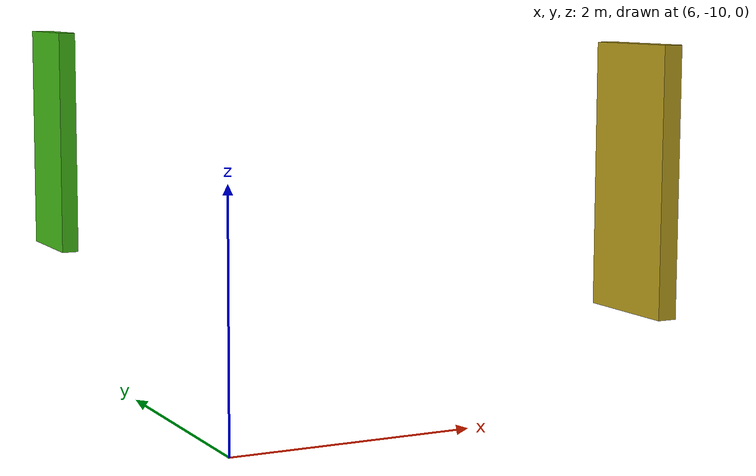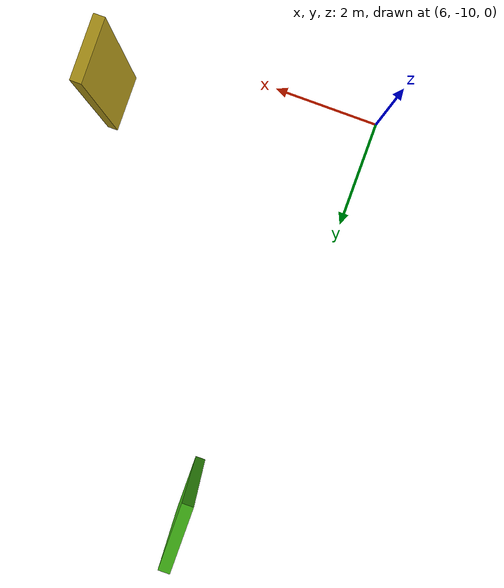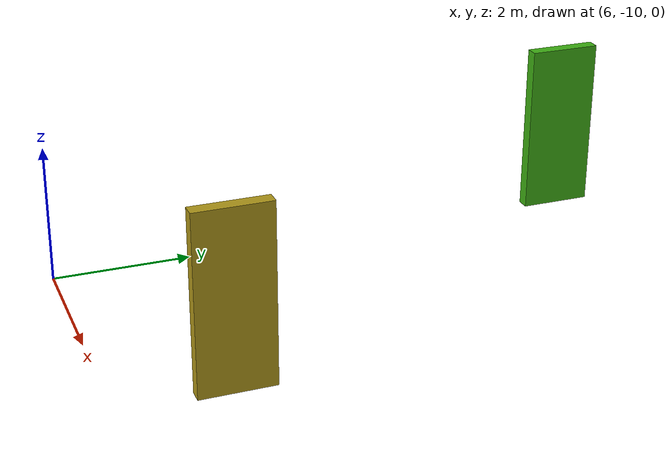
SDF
<?xml version="1.0"?>
<sdf version="1.9">
  <!-- Test geometry only. Navigation receives images, never these coordinates. -->
  <model name="depth_avoidance_fixture">
    <static>true</static>
    <link name="first_frond">
      <pose>7 -2.6 1.7 0 0 0</pose>
      <collision name="frond"><geometry><box><size>0.18 1.0 2.4</size></box></geometry></collision>
      <visual name="frond"><geometry><box><size>0.18 1.0 2.4</size></box></geometry>
        <material><ambient>0.15 0.55 0.05 1</ambient><diffuse>0.25 0.7 0.08 1</diffuse></material>
      </visual>
    </link>
    <link name="second_frond">
      <pose>10.5 -8.66 1.7 0 0 0</pose>
      <collision name="frond"><geometry><box><size>0.18 1.0 2.4</size></box></geometry></collision>
      <visual name="frond"><geometry><box><size>0.18 1.0 2.4</size></box></geometry>
        <material><ambient>0.55 0.4 0.05 1</ambient><diffuse>0.7 0.6 0.1 1</diffuse></material>
      </visual>
    </link>
  </model>
</sdf>
